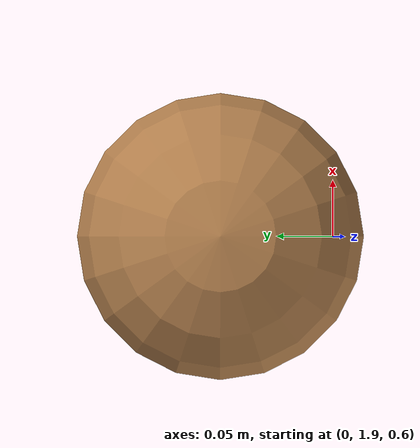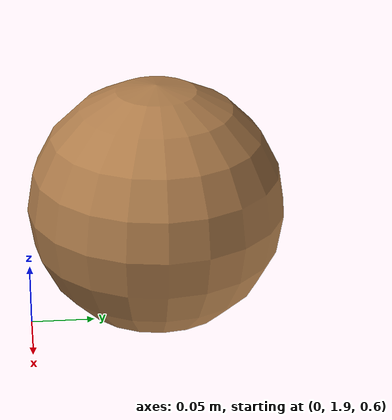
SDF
<?xml version="1.0" ?>
<sdf version="1.5">
  <world name="default">

    <!-- A testing model that includes the Velodyne sensor model -->
    <model name="my_sphere">
      <pose>0 2 0.7 0 0 0</pose>
      <include>
        <uri>file://sphere_obs/</uri>
      </include>

      <!-- Attach the plugin to this model -->
      <plugin name="cv_sphere" filename="libcv_sphere.so">
        <velocity>-0.5</velocity>
      </plugin>
    </model>

    <!-- A global light source -->
    <include>
      <uri>model://sun</uri>
    </include>

    <!-- A ground plane -->
    <include>
      <uri>model://ground_plane</uri>
    </include>
  </world>
</sdf>

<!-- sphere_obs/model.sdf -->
<sdf version="1.5">
<model name="sphere_obs">
  <pose>0 0 0 0 0 0</pose>
  <link name ='sphere_base'>
    <gravity>0</gravity>
    <pose>0 0 0 0 0 0</pose>
    <inertial>
      <!-- rho = 500 kg/m^3 -->
      <mass>2</mass>
      <inertia>
        <!-- https://en.wikipedia.org/wiki/List_of_moments_of_inertia#List_of_3D_inertia_tensors-->
        <ixx>0.008</ixx>
        <iyy>0.008</iyy>
        <izz>0.008</izz>
        <ixy>0</ixy>
        <ixz>0</ixz>
        <iyz>0</iyz>
      </inertia>
    </inertial>
    <collision name ='collision'>
      <geometry>
        <sphere><radius>0.1</radius></sphere>
      </geometry>
    </collision>
    <visual name='visual'>
      <geometry>
        <sphere><radius>0.1</radius></sphere>
      </geometry>
      <material>
          <script>
            <uri>file://media/materials/scripts/gazebo.material</uri>
            <name>Gazebo/Wood</name>
          </script>
      </material>
    </visual>
  </link>
</model>
</sdf>
